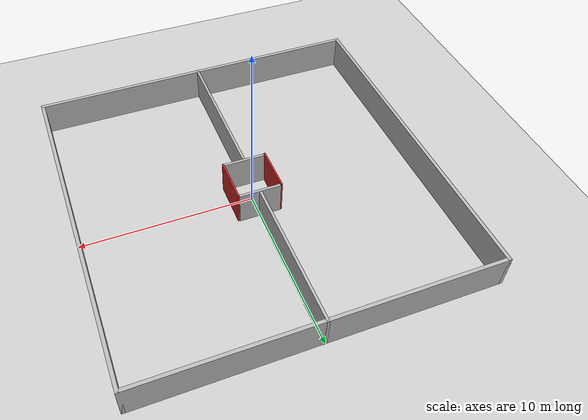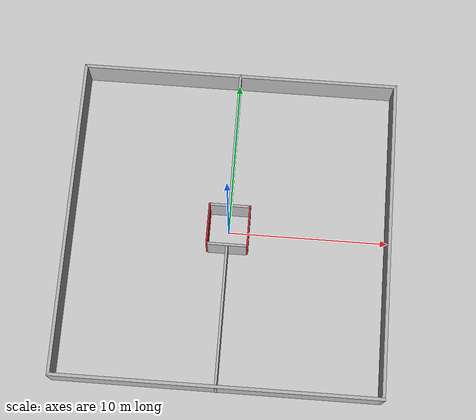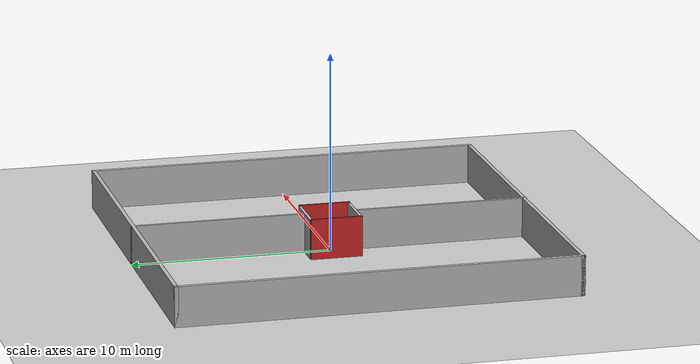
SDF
<sdf version="1.6">
 <world name="elevator">
  <include><uri>model://sun</uri></include>
  <include><uri>model://ground_plane</uri></include>
  <scene><shadows>0</shadows></scene>
  <physics type="ode">
   <max_step_size>0.001</max_step_size>
   <real_time_update_rate>1000</real_time_update_rate>
  </physics>
  <model name="elevator">
   <link name="world"/>
   <static>false</static>
   <link name="base_link"/>
   <joint name="fixed" type="fixed"><parent>world</parent><child>base_link</child></joint>
   <link name="door1">
    <pose>1.25 0 1.03 0 0 0</pose>
    <inertial>
     <mass>0.001</mass>
     <inertia><ixx>0.0036</ixx><ixy>0</ixy><ixz>0</ixz><iyy>0.0014</iyy><iyz>0</iyz><izz>0.0022</izz></inertia>
    </inertial>
    <collision name="door1_collision">
     <geometry><box><size>0.05 2.6 2.05</size></box></geometry>
     <surface><friction><ode><mu>0</mu><mu2>0</mu2></ode></friction></surface>
    </collision>
    <visual name="door1_visual">
     <geometry><box><size>0.1 2.6 2.05</size></box></geometry>
     <material><script><name>Gazebo/Red</name></script></material>
    </visual>
   </link>
   <joint name="door1_joint" type="prismatic">
    <parent>base_link</parent>
    <child>door1</child>
    <axis><xyz>0 1 0</xyz><limit><lower>0</lower><upper>2.5</upper><effort>1</effort></limit></axis>
   </joint>
   <link name="door2">
    <pose>-1.25 0 1.03 0 0 0</pose>
    <inertial>
     <mass>0.001</mass>
     <inertia><ixx>0.0036</ixx><ixy>0</ixy><ixz>0</ixz><iyy>0.0014</iyy><iyz>0</iyz><izz>0.0022</izz></inertia>
    </inertial>
    <collision name="door2_collision">
     <geometry><box><size>0.05 2.6 2.05</size></box></geometry>
     <surface><friction><ode><mu>0</mu><mu2>0</mu2></ode></friction></surface>
    </collision>
    <visual name="door2_visual">
     <geometry><box><size>0.1 2.6 2.05</size></box></geometry>
     <material><script><name>Gazebo/Red</name></script></material>
    </visual>
   </link>
   <joint name="door2_joint" type="prismatic">
    <parent>world</parent>
    <child>door2</child>
    <axis><xyz>0 1 0</xyz><limit><lower>0</lower><upper>2.5</upper><effort>1</effort></limit></axis>
   </joint>
   <plugin name="joint1_state_publisher" filename="libgazebo_ros_joint_state_publisher.so">
    <jointName>door1_joint</jointName>
    <robotNamespace>elevator</robotNamespace>
    <updateRate>50.0</updateRate>
    <alwaysOn>true</alwaysOn>
   </plugin>
   <plugin name="joint2_state_publisher" filename="libgazebo_ros_joint_state_publisher.so">
    <jointName>door2_joint</jointName>
    <robotNamespace>elevator</robotNamespace>
    <updateRate>50.0</updateRate>
    <alwaysOn>true</alwaysOn>
   </plugin>
   <plugin filename="libelevator_plugin.so" name="elevator_plugin">
    <door1_joint>elevator::door1</door1_joint>
    <door2_joint>elevator::door2</door2_joint>
    <door_wait_time>10</door_wait_time>
    <door_speed>0.5</door_speed>
    <fmax>10.0</fmax>
   </plugin>
  </model>
  <model name="elevator_shaft">
   <static>true</static>
   <link name="link2">
    <collision name="shaft_wall1_collision">
     <pose>0 1.25 1 0 0 0</pose>
     <geometry><box><size>2.2 0.15 2</size></box></geometry>
    </collision>
    <visual name="shaft_wall1_visual">
     <pose>0 1.25 1 0 0 0</pose>
     <geometry><box><size>2.4 0.15 2</size></box></geometry>
    </visual>
    <collision name="shaft_wall2_collision">
     <pose>0 -1.25 1 0 0 0</pose>
     <geometry><box><size>2.2 0.15 2</size></box></geometry>
    </collision>
    <visual name="shaft_wall2_visual">
     <pose>0 -1.25 1 0 0 0</pose>
     <geometry><box><size>2.4 0.15 2</size></box></geometry>
    </visual>
    <collision name="separation1_collision">
     <pose>0 -5.68 1 0 0 0</pose>
     <geometry><box><size>0.15 8.675 2</size></box></geometry>
    </collision>
    <visual name="separation1_visual">
     <pose>0 -5.68 1 0 0 0</pose>
     <geometry><box><size>0.15 8.675 2</size></box></geometry>
    </visual>
    <collision name="separation2_collision">
     <pose>0 5.68 1 0 0 0</pose>
     <geometry><box><size>0.15 8.675 2</size></box></geometry>
    </collision>
    <visual name="separation2_visual">
     <pose>0 5.68 1 0 0 0</pose>
     <geometry><box><size>0.15 8.675 2</size></box></geometry>
    </visual>
    <collision name="border1_collision">
     <pose>-9.9 0 1 0 0 0</pose>
     <geometry><box><size>0.2 20 2</size></box></geometry>
    </collision>
    <visual name="border1_visual">
     <pose>-9.9 0 1 0 0 0</pose>
     <geometry><box><size>0.2 20 2</size></box></geometry>
    </visual>
    <collision name="border3_collision">
     <pose>9.9 0 1 0 0 0</pose>
     <geometry><box><size>0.2 20 2</size></box></geometry>
    </collision>
    <visual name="border3_visual">
     <pose>9.9 0 1 0 0 0</pose>
     <geometry><box><size>0.2 20 2</size></box></geometry>
    </visual>
    <collision name="border2_collision">
     <pose>0 9.9 1 0 0 0</pose>
     <geometry><box><size>20 0.2 2</size></box></geometry>
    </collision>
    <visual name="border2_visual">
     <pose>0 9.9 1 0 0 0</pose>
     <geometry><box><size>20 0.2 2</size></box></geometry>
    </visual>
    <collision name="border4_collision">
     <pose>0 -9.9 1 0 0 0</pose>
     <geometry><box><size>20 0.2 2</size></box></geometry>
    </collision>
    <visual name="border4_visual">
     <pose>0 -9.9 1 0 0 0</pose>
     <geometry><box><size>20 0.2 2</size></box></geometry>
    </visual>
   </link>
  </model>
 </world>
</sdf>
